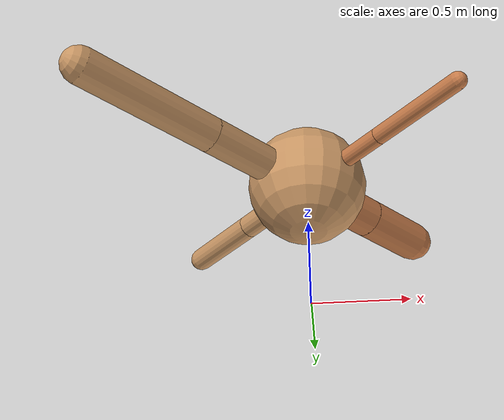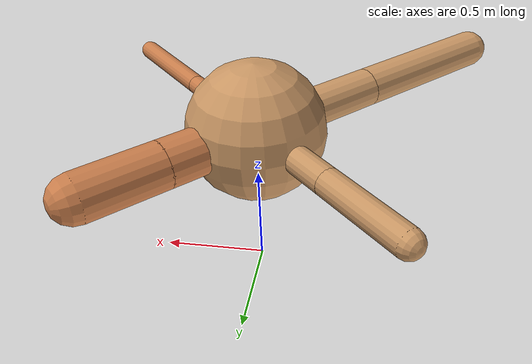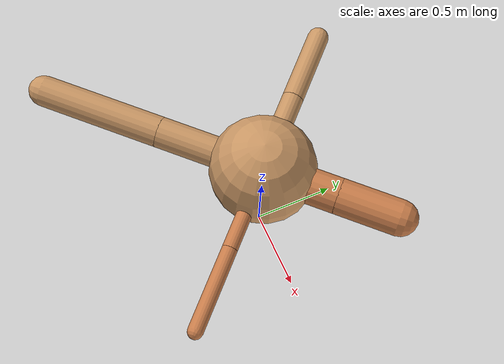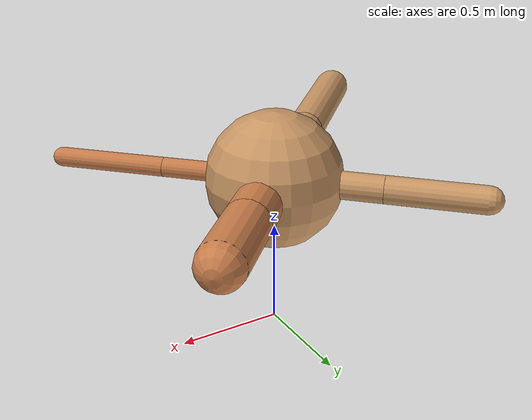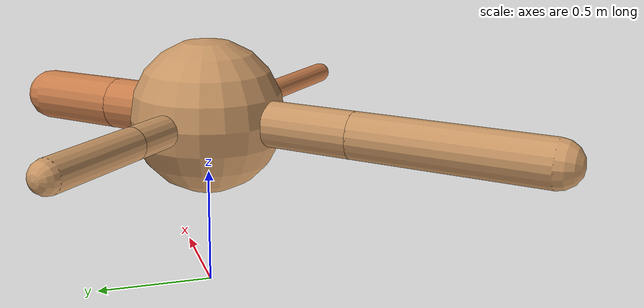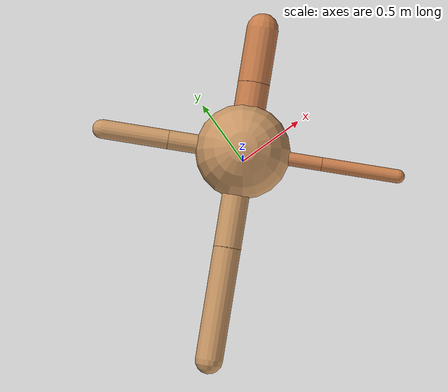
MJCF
<?xml version="1.0" ?>
<mujoco model="ant">

	<compiler angle="degree" coordinate="local" inertiafromgeom="true"/>

	<option integrator="RK4" timestep="0.01"/>

	<custom>

		<numeric data="0.0 0.0 0.55 1.0 0.0 0.0 0.0 0.0 1.0 0.0 -1.0 0.0 -1.0 0.0 1.0" name="init_qpos"/>

	</custom>

	<default>

		<joint armature="1" damping="1" limited="true"/>

		<geom conaffinity="0" condim="3" density="5.0" friction="1.5 0.1 0.1" margin="0.01" rgba="0.8 0.6 0.4 1"/>

	</default>

	<worldbody>

		<body name="torso" pos="0 0 0.75">

			<geom name="torso_geom" pos="0 0 0" size="0.3271415875849247" type="sphere"/>

			<!--joint armature="0" damping="0" limited="false" margin="0.01" name="root" pos="0 0 0" type="free"/-->

			<body name="front_left_leg" pos="0 0 0">

				<geom fromto="0 0 0 0.2 0.2 0" name="aux_1_geom" size="0.11065251232007318" type="capsule" rgba=".8 .5 .3 1"/>

				<body name="aux_1" pos="0.2 0.2 0">

					<joint axis="0 0 1" name="hip_1" pos="0.0 0.0 0.0" range="-40 40" type="hinge"/>

					<geom fromto="0 0 0 0.13501146052378063 0.13501146052378063 0" name="left_leg_geom" size="0.11065251232007318" type="capsule" rgba=".8 .5 .3 1"/>

					<body pos="0.13501146052378063 0.13501146052378063 0" name="front_left_foot">

						<joint axis="-1 1 0" name="ankle_1" pos="0.0 0.0 0.0" range="30 100" type="hinge"/>

						<geom fromto="0 0 0 0.27002292104756126 0.27002292104756126 0" name="left_ankle_geom" size="0.11065251232007318" type="capsule" rgba=".8 .5 .3 1"/>

					</body>

				</body>

			</body>

			<body name="front_right_leg" pos="0 0 0">

				<geom fromto="0 0 0 -0.2 0.2 0" name="aux_2_geom" size="0.06583146612197543" type="capsule"/>

				<body name="aux_2" pos="-0.2 0.2 0">

					<joint axis="0 0 1" name="hip_2" pos="0.0 0.0 0.0" range="-40 40" type="hinge"/>

					<geom fromto="0 0 0 -0.16405016376021317 0.16405016376021317 0" name="right_leg_geom" size="0.06583146612197543" type="capsule"/>

					<body pos="-0.16405016376021317 0.16405016376021317 0" name="front_right_foot">

						<joint axis="1 1 0" name="ankle_2" pos="0.0 0.0 0.0" range="-100 -30" type="hinge"/>

						<geom fromto="0 0 0 -0.32810032752042634 0.32810032752042634 0" name="right_ankle_geom" size="0.06583146612197543" type="capsule"/>

					</body>

				</body>

			</body>

			<body name="left_back_leg" pos="0 0 0">

				<geom fromto="0 0 0 -0.2 -0.2 0" name="aux_3_geom" size="0.09541130282566732" type="capsule"/>

				<body name="aux_3" pos="-0.2 -0.2 0">

					<joint axis="0 0 1" name="hip_3" pos="0.0 0.0 0.0" range="-40 40" type="hinge"/>

					<geom fromto="0 0 0 -0.2731434098447988 -0.2731434098447988 0" name="back_leg_geom" size="0.09541130282566732" type="capsule"/>

					<body pos="-0.2731434098447988 -0.2731434098447988 0" name="left_back_foot">

						<joint axis="-1 1 0" name="ankle_3" pos="0.0 0.0 0.0" range="-100 -30" type="hinge"/>

						<geom fromto="0 0 0 -0.5462868196895976 -0.5462868196895976 0" name="third_ankle_geom" size="0.09541130282566732" type="capsule"/>

					</body>

				</body>

			</body>

			<body name="right_back_leg" pos="0 0 0">

				<geom fromto="0 0 0 0.2 -0.2 0" name="aux_4_geom" size="0.046949304439529625" type="capsule" rgba=".8 .5 .3 1"/>

				<body name="aux_4" pos="0.2 -0.2 0">

					<joint axis="0 0 1" name="hip_4" pos="0.0 0.0 0.0" range="-40 40" type="hinge"/>

					<geom fromto="0 0 0 0.18692266915347835 -0.18692266915347835 0" name="rightback_leg_geom" size="0.046949304439529625" type="capsule" rgba=".8 .5 .3 1"/>

					<body pos="0.18692266915347835 -0.18692266915347835 0" name="right_back_foot">

						<joint axis="1 1 0" name="ankle_4" pos="0.0 0.0 0.0" range="30 100" type="hinge"/>

						<geom fromto="0 0 0 0.3738453383069567 -0.3738453383069567 0" name="fourth_ankle_geom" size="0.046949304439529625" type="capsule" rgba=".8 .5 .3 1"/>

					</body>

				</body>

			</body>

		</body>

	</worldbody>

	<actuator>

		<motor ctrllimited="true" ctrlrange="-1.0 1.0" joint="hip_4" gear="150"/>

		<motor ctrllimited="true" ctrlrange="-1.0 1.0" joint="ankle_4" gear="150"/>

		<motor ctrllimited="true" ctrlrange="-1.0 1.0" joint="hip_1" gear="150"/>

		<motor ctrllimited="true" ctrlrange="-1.0 1.0" joint="ankle_1" gear="150"/>

		<motor ctrllimited="true" ctrlrange="-1.0 1.0" joint="hip_2" gear="150"/>

		<motor ctrllimited="true" ctrlrange="-1.0 1.0" joint="ankle_2" gear="150"/>

		<motor ctrllimited="true" ctrlrange="-1.0 1.0" joint="hip_3" gear="150"/>

		<motor ctrllimited="true" ctrlrange="-1.0 1.0" joint="ankle_3" gear="150"/>

	</actuator>

</mujoco>
